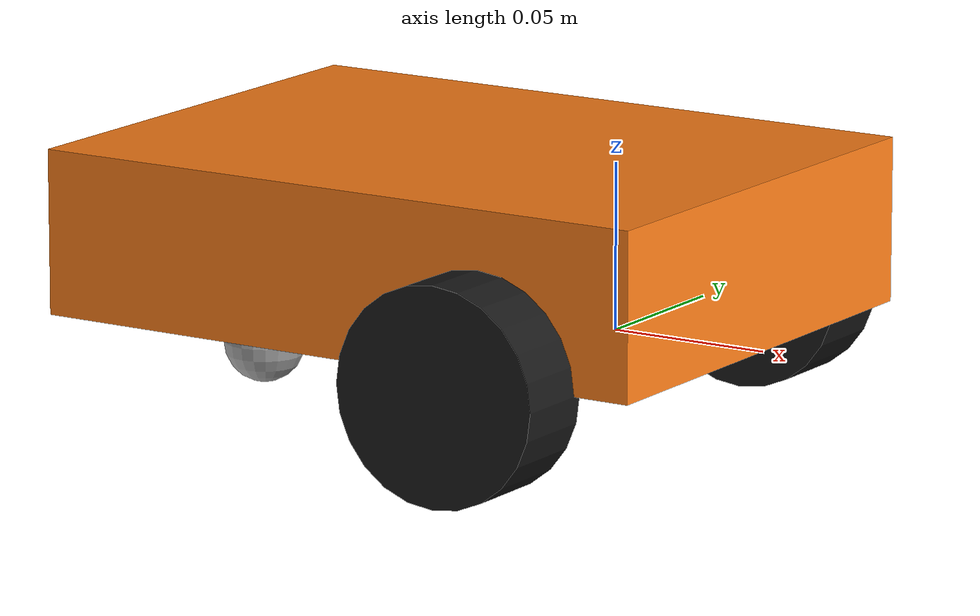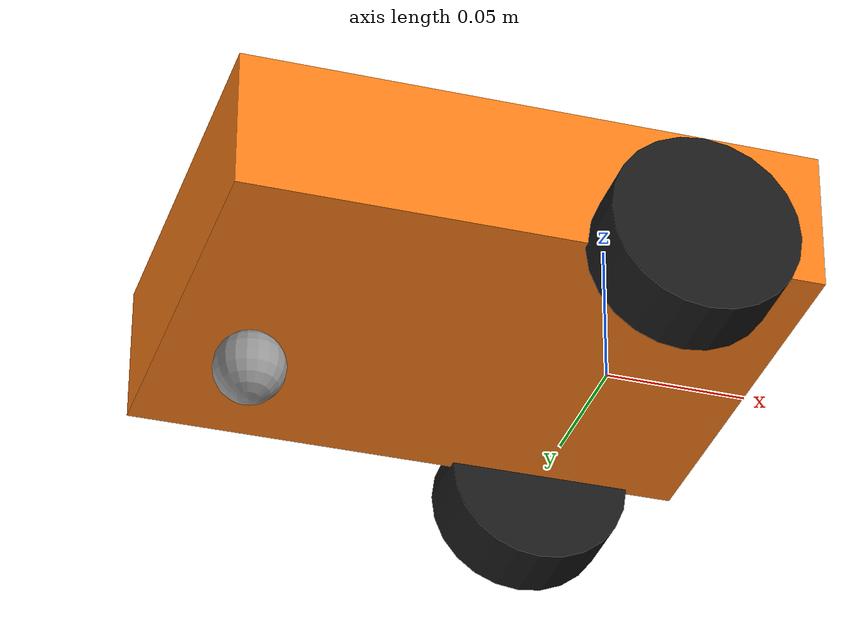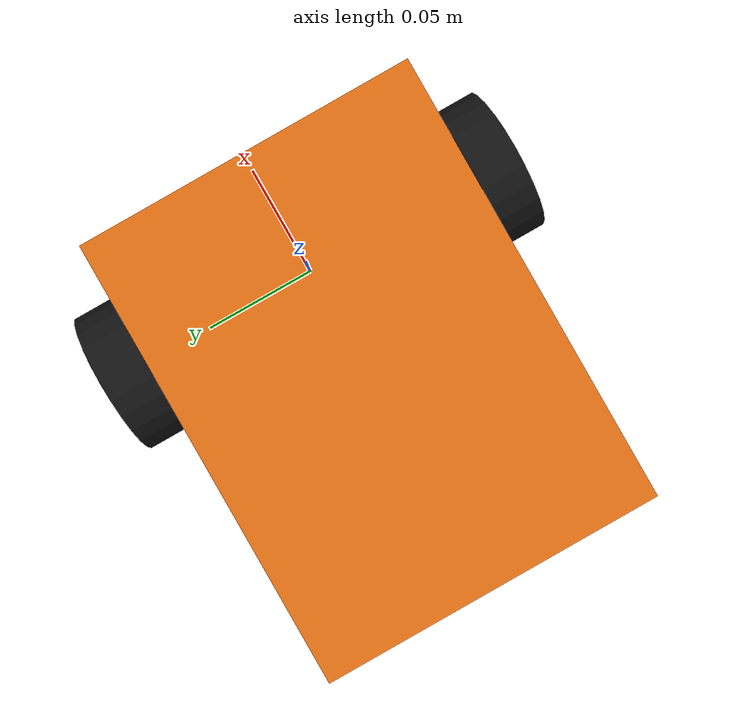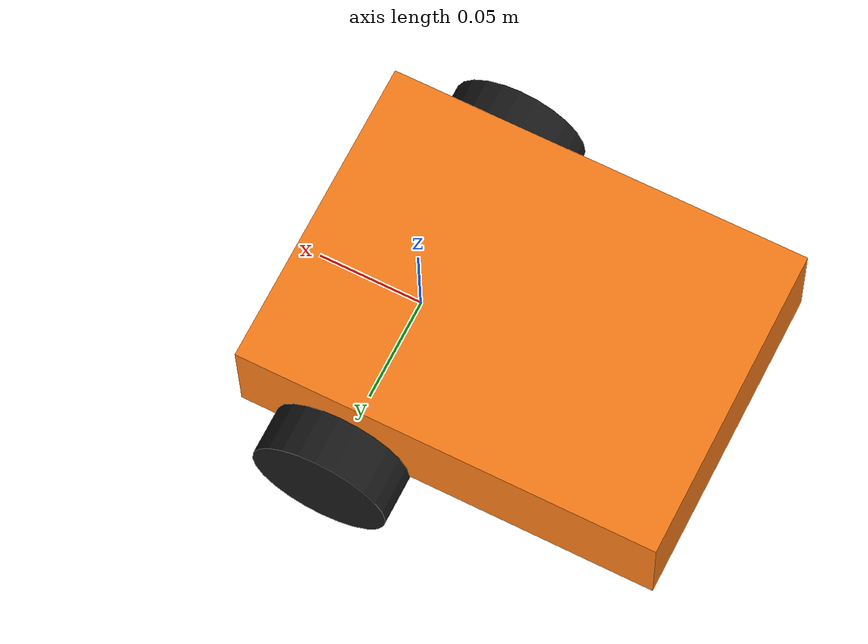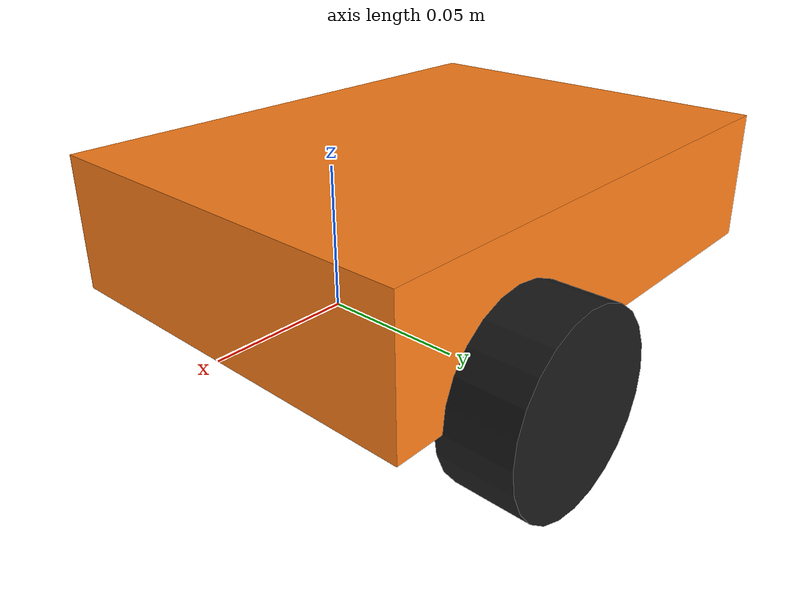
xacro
<?xml version="1.0"?>
<robot xmlns:xacro="http://www.ros.org/wiki/xacro" name="minibot">
  <!-- Change these to match your build. Everything else follows from them. -->
  <xacro:arg name="use_sim" default="true"/>
  <xacro:arg name="controllers_file" default=""/>
  <xacro:property name="chassis_length" value="0.20"/>
  <xacro:property name="chassis_width" value="0.15"/>
  <xacro:property name="chassis_height" value="0.05"/>
  <xacro:property name="chassis_mass" value="0.6"/>
  <xacro:property name="wheel_radius" value="0.0325"/>
  <xacro:property name="wheel_width" value="0.026"/>
  <xacro:property name="wheel_mass" value="0.05"/>
  <!-- Distance between the two wheel centres. Must match wheel_separation in the controller config. -->
  <xacro:property name="wheel_separation" value="0.17"/>
  <xacro:property name="wheel_offset_x" value="0.05"/>
  <xacro:property name="caster_radius" value="0.0125"/>

  <xacro:include filename="$(find minibot_description)/urdf/inertia.xacro"/>
  <xacro:include filename="$(find minibot_description)/urdf/ros2_control.xacro"/>

  <link name="base_link"/>

  <!-- Footprint on the ground, used by Nav2 -->
  <joint name="base_footprint_joint" type="fixed">
    <parent link="base_link"/>
    <child link="base_footprint"/>
    <origin xyz="0 0 ${-wheel_radius}"/>
  </joint>
  <link name="base_footprint"/>

  <joint name="chassis_joint" type="fixed">
    <parent link="base_link"/>
    <child link="chassis"/>
    <origin xyz="${-wheel_offset_x} 0 0"/>
  </joint>
  <link name="chassis">
    <visual>
      <origin xyz="0 0 ${chassis_height/2}"/>
      <geometry><box size="${chassis_length} ${chassis_width} ${chassis_height}"/></geometry>
      <material name="orange"><color rgba="1 0.5 0.1 1"/></material>
    </visual>
    <collision>
      <origin xyz="0 0 ${chassis_height/2}"/>
      <geometry><box size="${chassis_length} ${chassis_width} ${chassis_height}"/></geometry>
    </collision>
    <xacro:box_inertia m="${chassis_mass}" x="${chassis_length}" y="${chassis_width}" z="${chassis_height}" ox="0" oy="0" oz="${chassis_height/2}"/>
  </link>

  <xacro:macro name="wheel" params="side reflect">
    <joint name="${side}_wheel_joint" type="continuous">
      <parent link="base_link"/>
      <child link="${side}_wheel"/>
      <origin xyz="0 ${reflect*wheel_separation/2} 0" rpy="${-pi/2} 0 0"/>
      <axis xyz="0 0 1"/>
    </joint>
    <link name="${side}_wheel">
      <visual>
        <geometry><cylinder radius="${wheel_radius}" length="${wheel_width}"/></geometry>
        <material name="black"><color rgba="0.1 0.1 0.1 1"/></material>
      </visual>
      <collision>
        <geometry><cylinder radius="${wheel_radius}" length="${wheel_width}"/></geometry>
      </collision>
      <xacro:cylinder_inertia m="${wheel_mass}" r="${wheel_radius}" h="${wheel_width}"/>
    </link>
    <gazebo reference="${side}_wheel">
      <collision><surface><friction><ode><mu>1.0</mu><mu2>1.0</mu2></ode></friction></surface></collision>
    </gazebo>
  </xacro:macro>
  <xacro:wheel side="left" reflect="1"/>
  <xacro:wheel side="right" reflect="-1"/>

  <!-- Frictionless caster at the back -->
  <joint name="caster_joint" type="fixed">
    <parent link="chassis"/>
    <child link="caster"/>
    <origin xyz="${-chassis_length/2 + caster_radius*2} 0 ${caster_radius - wheel_radius}"/>
  </joint>
  <link name="caster">
    <visual>
      <geometry><sphere radius="${caster_radius}"/></geometry>
      <material name="grey"><color rgba="0.6 0.6 0.6 1"/></material>
    </visual>
    <collision><geometry><sphere radius="${caster_radius}"/></geometry></collision>
    <xacro:sphere_inertia m="0.01" r="${caster_radius}"/>
  </link>
  <gazebo reference="caster">
    <collision><surface><friction><ode><mu>0.0</mu><mu2>0.0</mu2></ode></friction></surface></collision>
  </gazebo>

  <xacro:minibot_ros2_control use_sim="$(arg use_sim)" controllers_file="$(arg controllers_file)"/>
</robot>

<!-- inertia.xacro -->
<robot xmlns:xacro="http://www.ros.org/wiki/xacro">
  <xacro:macro name="box_inertia" params="m x y z ox oy oz">
    <inertial>
      <origin xyz="${ox} ${oy} ${oz}"/>
      <mass value="${m}"/>
      <inertia ixx="${m*(y*y+z*z)/12}" ixy="0" ixz="0" iyy="${m*(x*x+z*z)/12}" iyz="0" izz="${m*(x*x+y*y)/12}"/>
    </inertial>
  </xacro:macro>
  <xacro:macro name="cylinder_inertia" params="m r h">
    <inertial>
      <mass value="${m}"/>
      <inertia ixx="${m*(3*r*r+h*h)/12}" ixy="0" ixz="0" iyy="${m*(3*r*r+h*h)/12}" iyz="0" izz="${m*r*r/2}"/>
    </inertial>
  </xacro:macro>
  <xacro:macro name="sphere_inertia" params="m r">
    <inertial>
      <mass value="${m}"/>
      <inertia ixx="${2*m*r*r/5}" ixy="0" ixz="0" iyy="${2*m*r*r/5}" iyz="0" izz="${2*m*r*r/5}"/>
    </inertial>
  </xacro:macro>
</robot>
